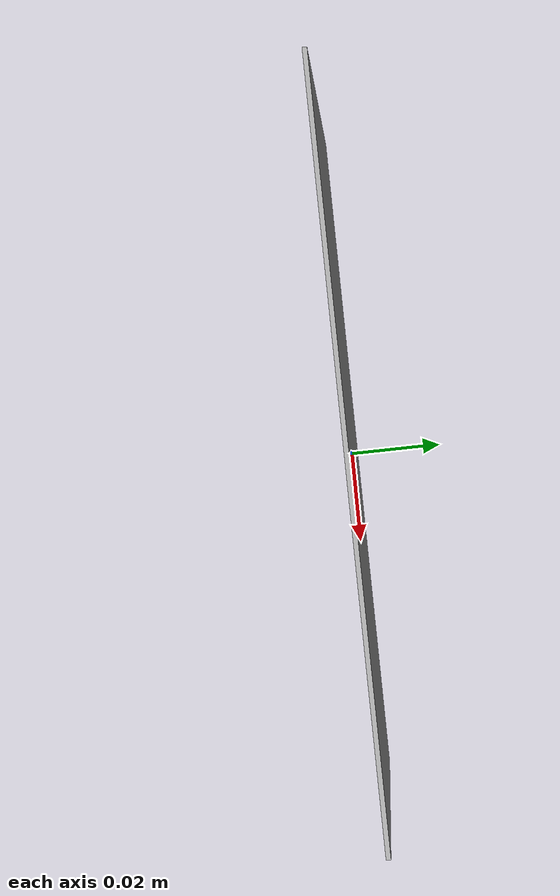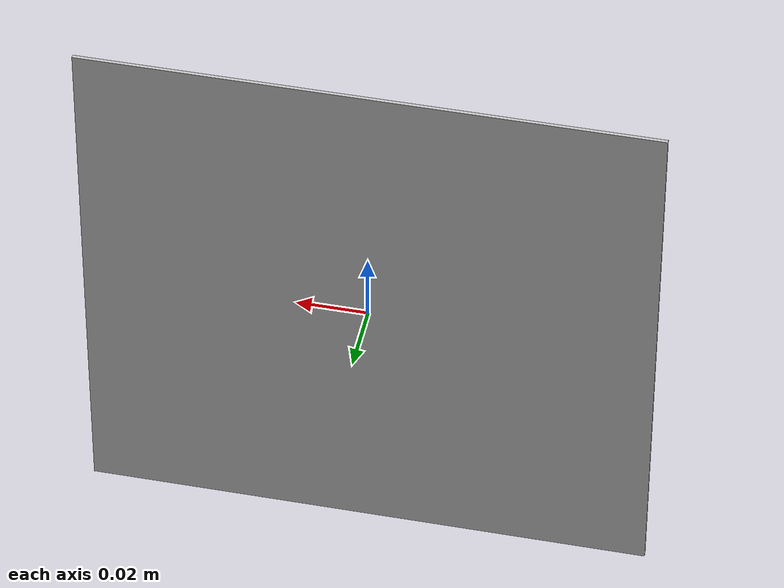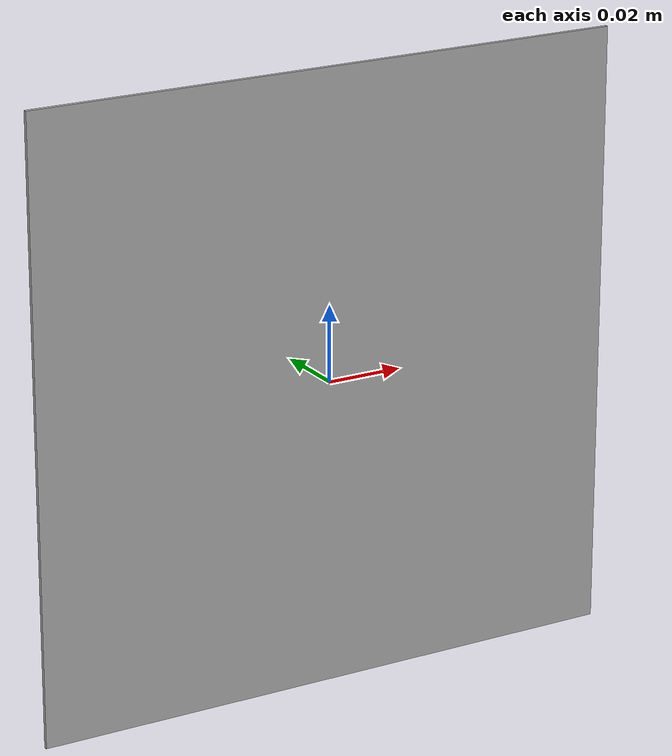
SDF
<?xml version="1.0"?>
<sdf version="1.7">
    <model name="marker_2">
        <static>true</static>
        <link name="link">
            <collision name="collision">
                <geometry>
                    <box>
                        <size>.16 0.001 .16</size>
                    </box>
                </geometry>
            </collision>
            <visual name="visual">
                <cast_shadows>false</cast_shadows>
                <geometry>
                    <box>
                        <size>.16 0.001 .16</size>
                    </box>
                </geometry>
                <material>
                    <script>
                        <uri>model://marker_2/materials/scripts</uri>
                        <uri>model://marker_2/materials/textures</uri>
                        <name>vrc/marker2</name>
                    </script>
                </material>
            </visual>
        </link>
    </model>
</sdf>
